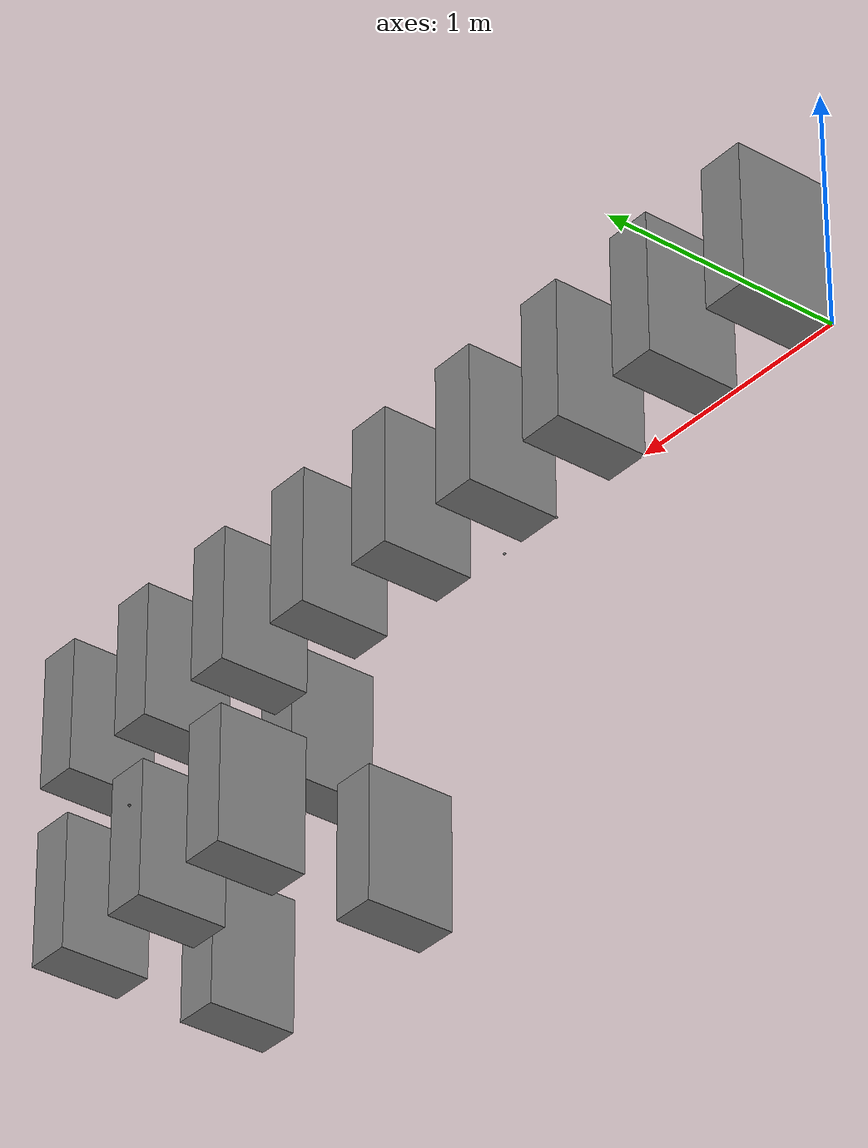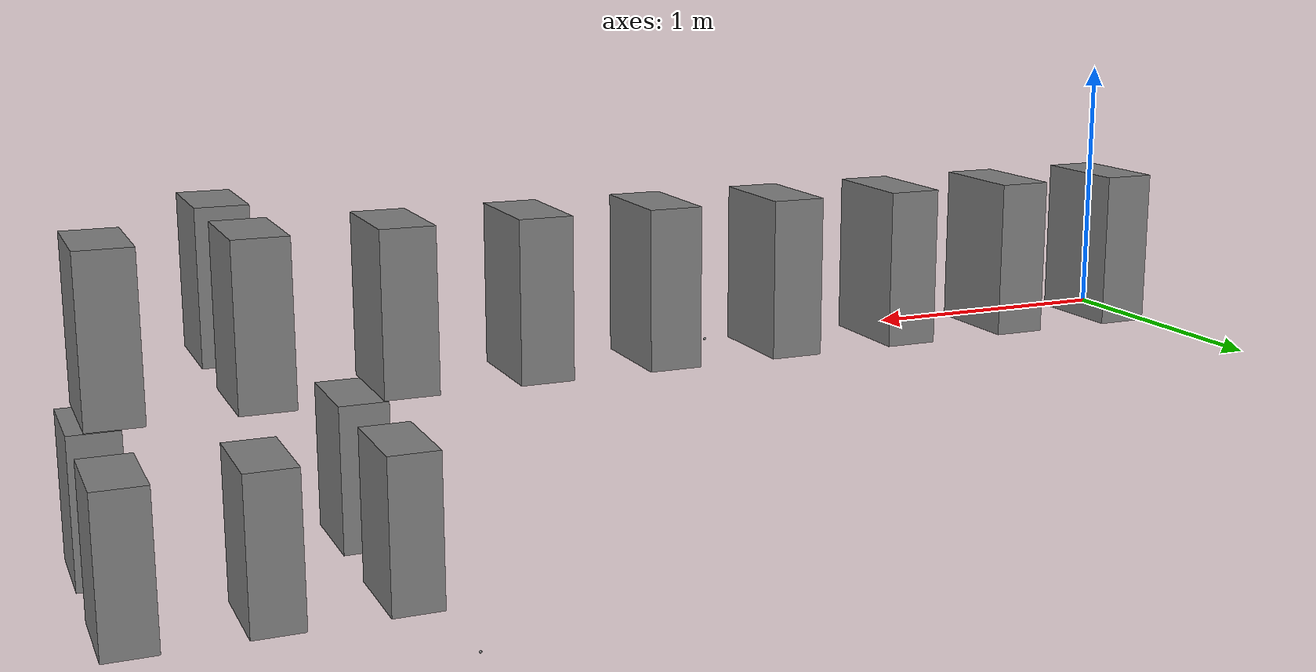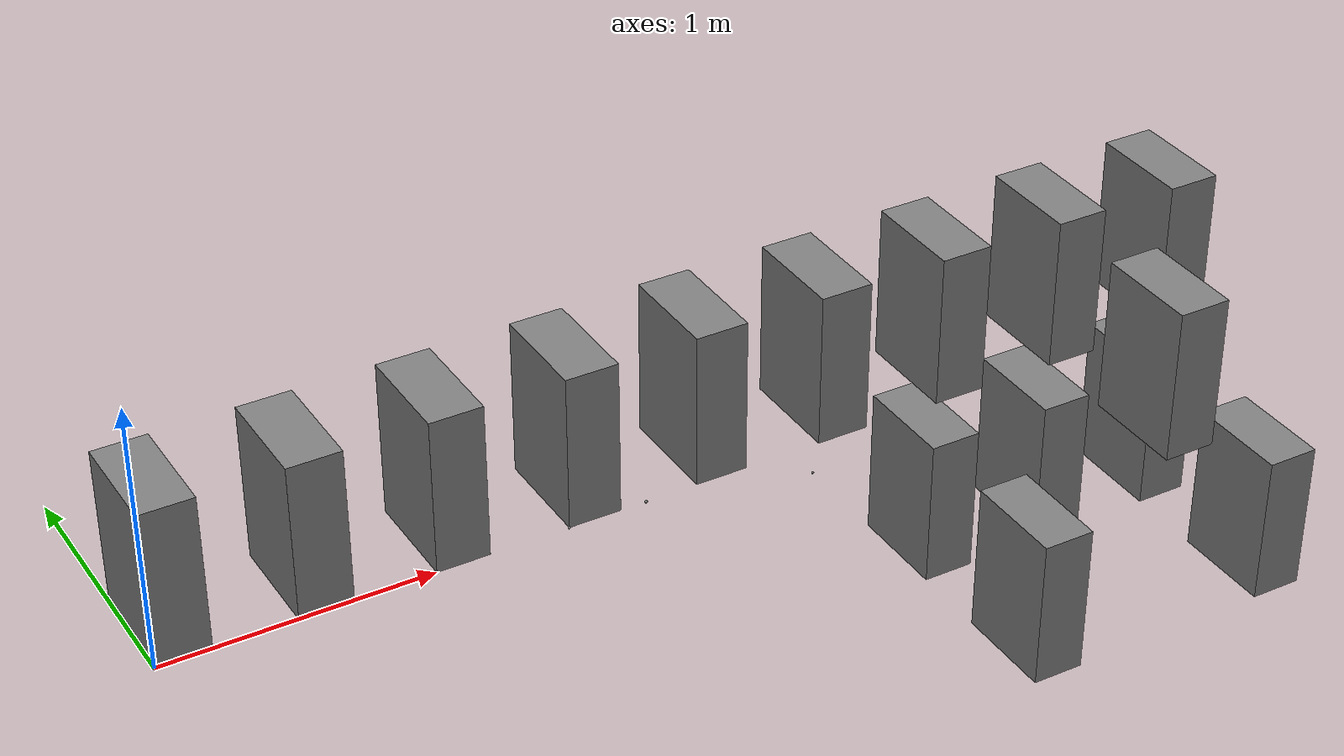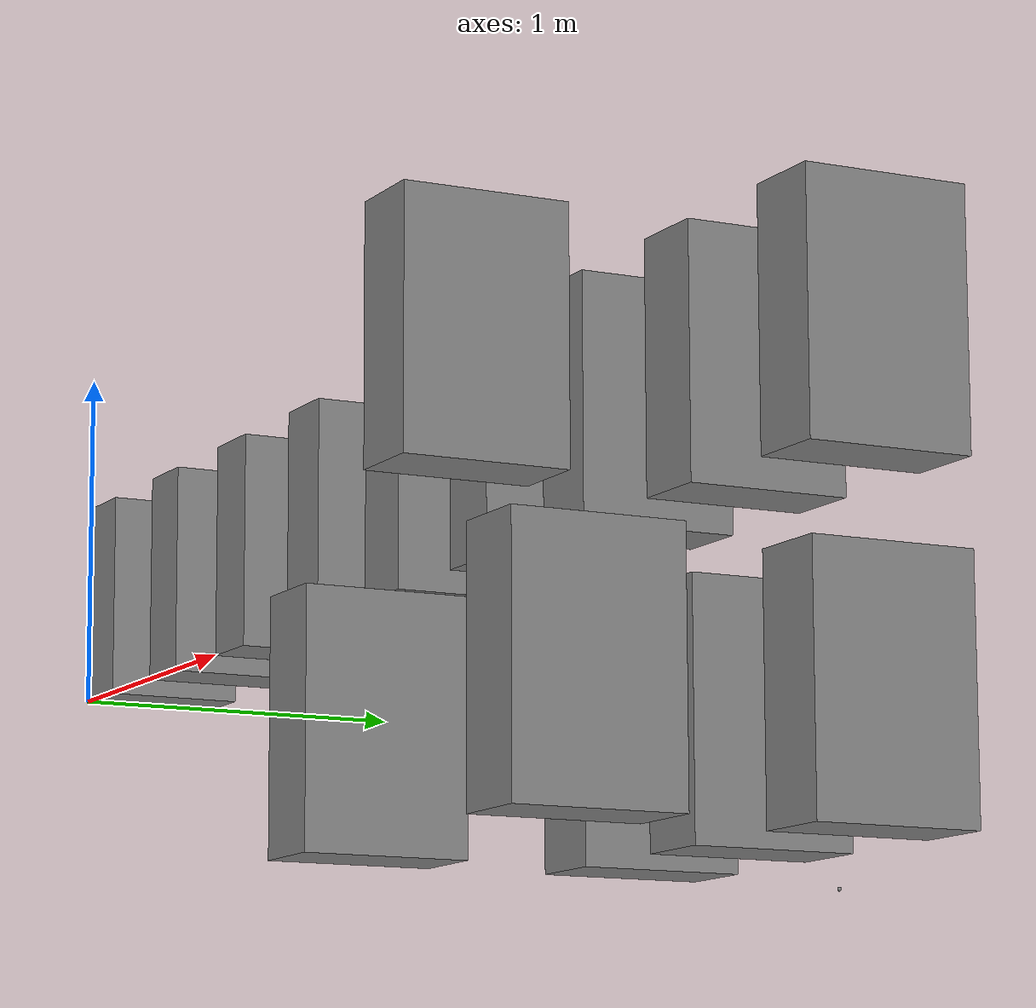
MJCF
<!-- For validating dynamics of joints:

* free, ball, slide, hinge joints
* stacked joints (e.g. hinge + slide, ball + slide, etc)
* n-link kinematic chains
* limits, armature, damping
--><mujoco model="pendula">
  <compiler autolimits="true" meshdir="F:/--CodeRepo/--CodeRepo/Research/___Mujoco/mujoco/mujoco/icse27/mujoco_rl_fuzz_2.0/.cache/repos/mjx/mjx/mujoco/mjx/test_data" texturedir="F:/--CodeRepo/--CodeRepo/Research/___Mujoco/mujoco/mujoco/icse27/mujoco_rl_fuzz_2.0/.cache/repos/mjx/mjx/mujoco/mjx/test_data" assetdir="F:/--CodeRepo/--CodeRepo/Research/___Mujoco/mujoco/mujoco/icse27/mujoco_rl_fuzz_2.0/.cache/repos/mjx/mjx/mujoco/mjx/test_data"/>

  <option timestep="0.02">
    <flag contact="disable"/>
  </option>

  <default>
    <geom type="box" pos=".1 .2 .3" size=".1 .2 .3"/>
    <joint damping="0.25" stiffness="0.1"/>
  </default>

  <worldbody>
    <site name="origin"/>
    <camera pos="0 1.5 0.8" xyaxes="-1 0 0 0 -0.2 .8"/>
    <camera mode="targetbodycom" pos="1 -1 2"/>
    <camera mode="targetbodycom" target="body" pos="0 -1 2"/>
    <camera mode="targetbody" target="body" pos="0 -1 -2"/>

    <!-- a single free body -->
    <body pos="0 0 0">
      <camera mode="fixed" pos="0 0.1 0.1" euler="2.7 0 0"/>
      <camera pos="-3 0 1" xyaxes="0 -1 0 1 0 2" mode="trackcom"/>
      <camera pos="-3 0 1" xyaxes="0 -1 0 1 0 2" mode="track"/>
      <freejoint/>
      <geom/>
    </body>

    <!-- a single ball joint with a limit -->
    <body name="body" pos="0.5 0 0">
      <joint name="joint1" type="ball" range="0 35"/>
      <site name="s1" pos="1.3 0 0"/>
      <geom/>
    </body>

    <!-- a single slide joint with a limit -->
    <body pos="1.0 0 0">
      <joint name="joint2" type="slide" axis="0.1 0.2 0.3" range="-1 1"/>
      <site name="s2"/>
      <geom/>
    </body>

    <!-- a single hinge joint with a limit -->
    <body pos="1.5 0 0">
      <joint name="joint3" type="hinge" axis="0.1 0.2 0.3" range="-35 50"/>
      <site name="s3" quat="1 0 1 0"/>
      <geom/>
    </body>

    <!-- stacked joint: hinge + slide -->
    <body pos="2.0 0 0">
      <joint name="joint4" type="hinge" axis="0.1 0.2 0.3"/>
      <joint name="joint5" type="slide" axis="0.4 0.5 0.6" range="0 1"/>
      <geom/>
    </body>

    <!-- stacked joint: slide + ball -->
    <body pos="2.5 0 0">
      <joint name="joint6" type="slide" axis="0.4 0.5 0.6" range="0 1"/>
      <joint type="ball"/>
      <geom/>
    </body>

    <!-- triple pendulum of hinges -->
    <body pos="3.0 0 0">
      <joint name="joint7" axis="0.1 0.2 0.3" type="hinge"/>
      <geom/>
      <body pos="0 0 -0.8">
        <joint name="joint8" axis="0.4 0.5 0.6" type="hinge" armature="0.02" range="-20 20"/>
        <geom/>
        <body pos="0 -0.7 0">
          <joint name="joint9" axis="0.7 0.8 0.9" type="hinge" damping="0.75" range="-30 30"/>
          <site name="s4" pos="0 1.5 0" quat="1 0 1 0"/>
          <geom/>
        </body>
      </body>
    </body>

    <!-- cherry pendulum: two bodies attached to same parent body -->
    <body pos="3.5 0 0">
      <joint name="joint10" type="ball" damping="0.5"/>
      <geom/>
      <body pos="0 0 -0.8">
        <joint name="joint11" axis="0.4 0.5 0.6" type="hinge" armature="0.02" range="-20 20"/>
        <geom/>
      </body>
      <body pos="0 -0.7 0">
        <joint name="joint12" axis="0.7 0.8 0.9" type="hinge" damping="0.75" range="-30 30"/>
        <geom/>
      </body>
    </body>

    <!-- falling pendulum -->
    <body pos="4.0 0 0">
      <freejoint/>
      <geom/>
      <body pos="0 0 -0.8">
        <joint name="joint13" axis="0.4 0.5 0.6" type="slide" armature="0.02" range="-0.4 0.6"/>
        <geom/>
        <body pos="0 -0.7 0">
          <joint name="joint14" axis="0.7 0.8 0.9" type="hinge" damping="0.75" range="-30 30"/>
          <geom/>
        </body>
      </body>
    </body>

    <!-- triple pendulum of hinges with gravcomp -->
    <body pos="3.0 0 0" gravcomp="1">
      <joint name="joint15" axis="0.1 0.2 0.3" type="hinge"/>
      <geom/>
      <body pos="0 0 -0.8" gravcomp="2">
        <joint name="joint16" axis="0.4 0.5 0.6" type="hinge" armature="0.02" range="-20 20"/>
        <geom/>
        <body pos="0 -0.7 0" gravcomp="3">
          <joint name="joint17" axis="0.7 0.8 0.9" type="hinge" damping="0.75" range="-30 30" actuatorgravcomp="true"/>
          <geom/>
        </body>
      </body>
    </body>
  </worldbody>

  <tendon>
    <fixed name="tendon_1" limited="true" range="-0.3 0.1" stiffness=".1" damping=".2">
      <joint joint="joint2" coef=".1"/>
      <joint joint="joint3" coef="-.2"/>
    </fixed>
    <fixed name="tendon_2" limited="true" range="-0.3 2" springlength="0 0.05" stiffness=".3" damping=".4">
      <joint joint="joint4" coef=".3"/>
      <joint joint="joint5" coef="-.4"/>
    </fixed>
  </tendon>

  <actuator>
    <motor gear="250 0 0" joint="joint1" name="act1"/>
    <motor gear="0 275 0" joint="joint1" name="act2"/>
    <motor gear="0 0 300" joint="joint1" name="act3"/>
    <motor gear="275" joint="joint2" name="act4"/>
    <motor gear="275" joint="joint3" name="act5"/>
    <motor gear="150" joint="joint15" name="act6"/>
    <motor gear="150" joint="joint16" name="act7"/>
    <motor gear="150" joint="joint17" name="act8"/>
    <position tendon="tendon_2" kp="100"/>
  </actuator>
</mujoco>
